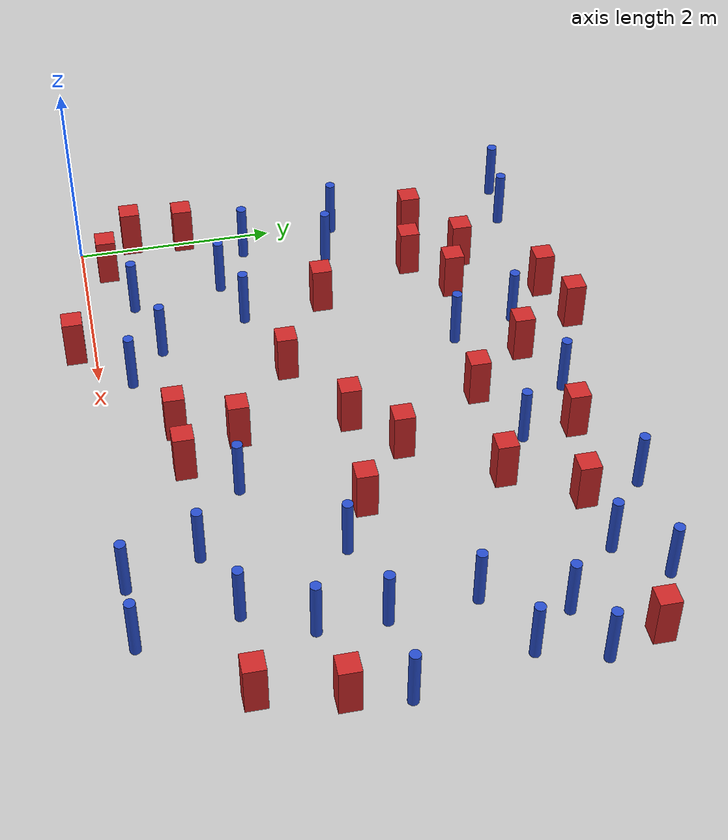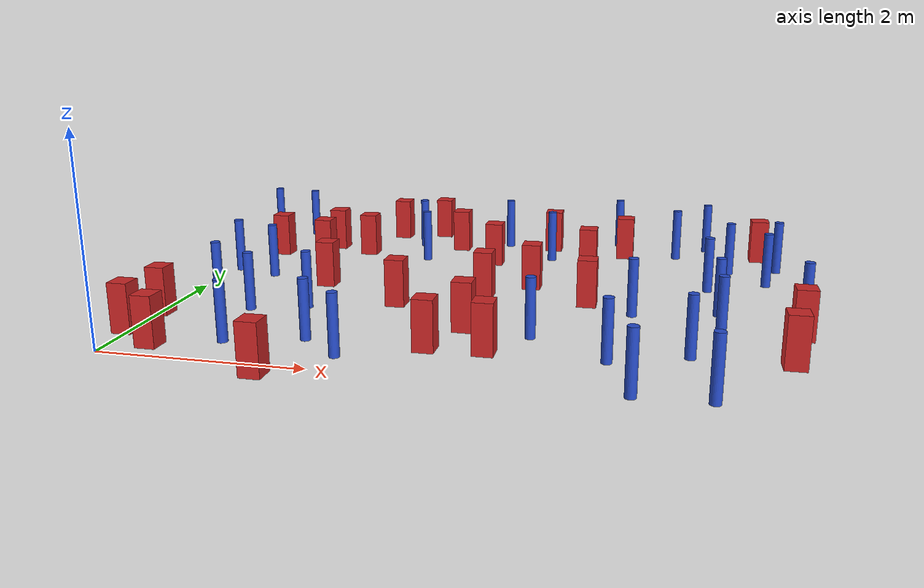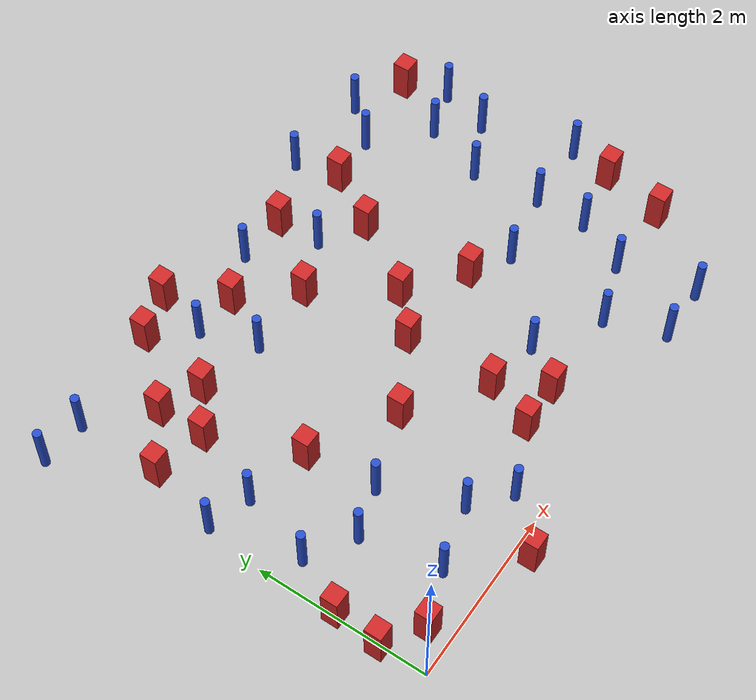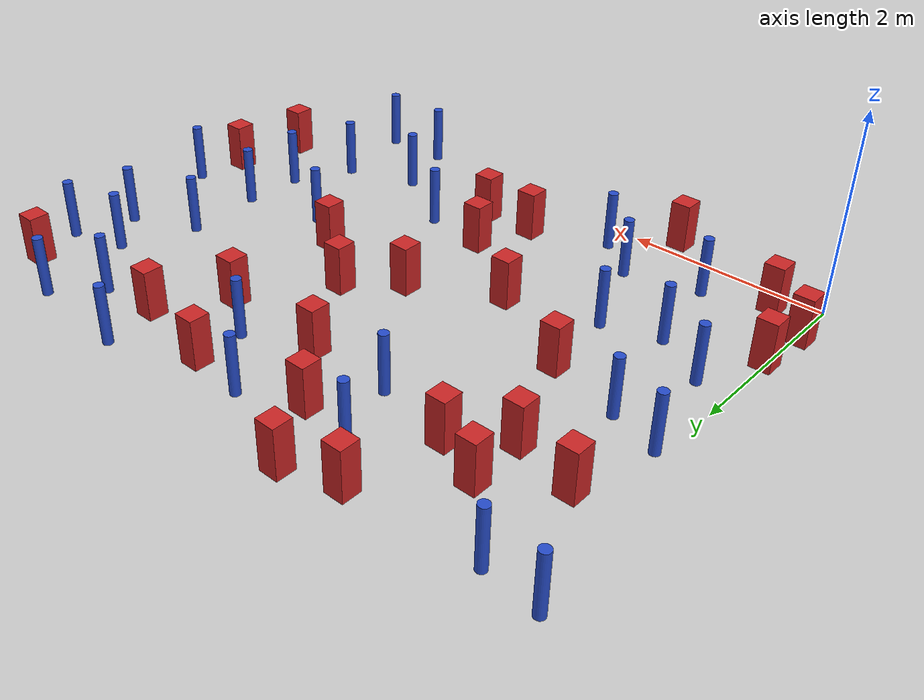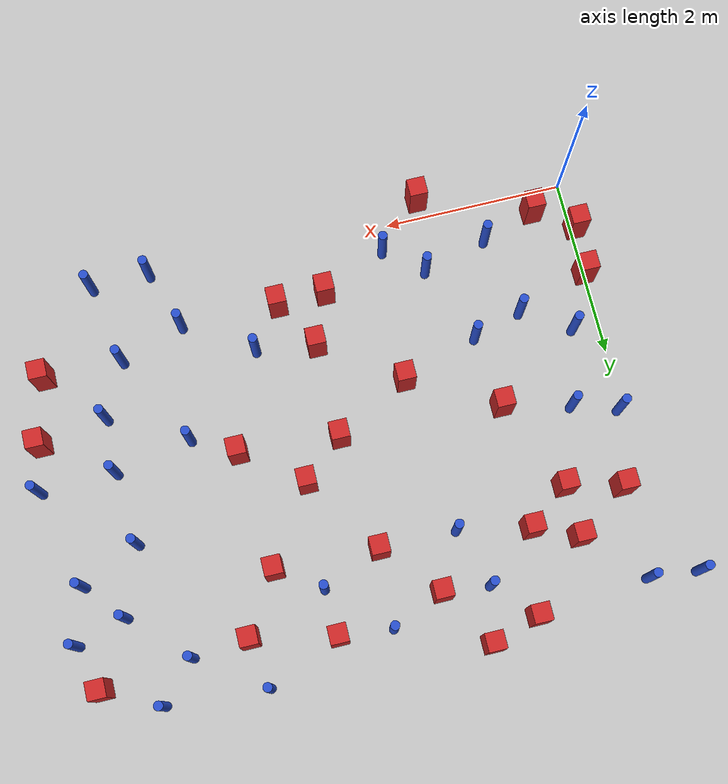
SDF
<sdf version="1.6">
 <model name="dense_99">
  <model name="square_post_obstacle0">
   <static>true</static>
   <pose>0.278284091233 3.50186409478 8.22691968438e-08 7.22125133819e-06 -7.54495500217e-07 2.29674213826e-05</pose>
   <link name="link">
    <pose>0 0 0.25 0 -0 0</pose>
    <inertial>
     <mass>100</mass>
     <inertia>
      <ixx>0.166667</ixx>
      <ixy>0</ixy>
      <ixz>0</ixz>
      <iyy>0.166667</iyy>
      <iyz>0</iyz>
      <izz>0.166667</izz>
     </inertia>
    </inertial>
    <collision name="collision"><geometry><box><size>.2 .2 .5</size></box></geometry></collision>
    <visual name="visual">
     <geometry><box><size>.2 .2 .5</size></box></geometry>
     <material>
      <script><name>Gazebo/Red</name><uri>file://media/materials/scripts/gazebo.material</uri></script>
     </material>
    </visual>
   </link>
  </model>
  <model name="pole_obstacle13">
   <static>true</static>
   <pose>4.39369261284 4.69720485507 2.88873142074e-08 -9.90536690842e-09 4.60219948965e-07 -1.20965994976e-07</pose>
   <link name="link">
    <pose>0 0 0.3 0 -0 0</pose>
    <inertial>
     <mass>1</mass>
     <inertia><ixx>0.145833</ixx><ixy>0</ixy><ixz>0</ixz><iyy>0.145833</iyy><iyz>0</iyz><izz>0.125</izz></inertia>
    </inertial>
    <collision name="collision">
     <geometry><cylinder><radius>0.05</radius><length>.6</length></cylinder></geometry>
    </collision>
    <visual name="visual">
     <geometry><cylinder><radius>0.05</radius><length>.6</length></cylinder></geometry>
     <material>
      <script><name>Gazebo/Blue</name><uri>file://media/materials/scripts/gazebo.material</uri></script>
     </material>
    </visual>
   </link>
  </model>
  <model name="pole_obstacle21">
   <static>true</static>
   <pose>5.4323473388 2.91390937879 2.88873142074e-08 -9.90536690245e-09 4.6021994898e-07 -1.20965994966e-07</pose>
   <link name="link">
    <pose>0 0 0.3 0 -0 0</pose>
    <inertial>
     <mass>1</mass>
     <inertia><ixx>0.145833</ixx><ixy>0</ixy><ixz>0</ixz><iyy>0.145833</iyy><iyz>0</iyz><izz>0.125</izz></inertia>
    </inertial>
    <collision name="collision">
     <geometry><cylinder><radius>0.05</radius><length>.6</length></cylinder></geometry>
    </collision>
    <visual name="visual">
     <geometry><cylinder><radius>0.05</radius><length>.6</length></cylinder></geometry>
     <material>
      <script><name>Gazebo/Blue</name><uri>file://media/materials/scripts/gazebo.material</uri></script>
     </material>
    </visual>
   </link>
  </model>
  <model name="pole_obstacle24">
   <static>true</static>
   <pose>5.50613115673 2.10906915194 2.88873142074e-08 -9.90536690245e-09 4.6021994898e-07 -1.20965994966e-07</pose>
   <link name="link">
    <pose>0 0 0.3 0 -0 0</pose>
    <inertial>
     <mass>1</mass>
     <inertia><ixx>0.145833</ixx><ixy>0</ixy><ixz>0</ixz><iyy>0.145833</iyy><iyz>0</iyz><izz>0.125</izz></inertia>
    </inertial>
    <collision name="collision">
     <geometry><cylinder><radius>0.05</radius><length>.6</length></cylinder></geometry>
    </collision>
    <visual name="visual">
     <geometry><cylinder><radius>0.05</radius><length>.6</length></cylinder></geometry>
     <material>
      <script><name>Gazebo/Blue</name><uri>file://media/materials/scripts/gazebo.material</uri></script>
     </material>
    </visual>
   </link>
  </model>
  <model name="square_post_obstacle19">
   <static>true</static>
   <pose>3.08959006721 2.27627172951 8.22691968438e-08 7.2212513382e-06 -7.54495500217e-07 2.29674213826e-05</pose>
   <link name="link">
    <pose>0 0 0.25 0 -0 0</pose>
    <inertial>
     <mass>100</mass>
     <inertia>
      <ixx>0.166667</ixx>
      <ixy>0</ixy>
      <ixz>0</ixz>
      <iyy>0.166667</iyy>
      <iyz>0</iyz>
      <izz>0.166667</izz>
     </inertia>
    </inertial>
    <collision name="collision"><geometry><box><size>.2 .2 .5</size></box></geometry></collision>
    <visual name="visual">
     <geometry><box><size>.2 .2 .5</size></box></geometry>
     <material>
      <script><name>Gazebo/Red</name><uri>file://media/materials/scripts/gazebo.material</uri></script>
     </material>
    </visual>
   </link>
  </model>
  <model name="pole_obstacle29">
   <static>true</static>
   <pose>5.48616518932 4.61730662018 2.88873142074e-08 -9.90536690842e-09 4.60219948965e-07 -1.20965994976e-07</pose>
   <link name="link">
    <pose>0 0 0.3 0 -0 0</pose>
    <inertial>
     <mass>1</mass>
     <inertia><ixx>0.145833</ixx><ixy>0</ixy><ixz>0</ixz><iyy>0.145833</iyy><iyz>0</iyz><izz>0.125</izz></inertia>
    </inertial>
    <collision name="collision">
     <geometry><cylinder><radius>0.05</radius><length>.6</length></cylinder></geometry>
    </collision>
    <visual name="visual">
     <geometry><cylinder><radius>0.05</radius><length>.6</length></cylinder></geometry>
     <material>
      <script><name>Gazebo/Blue</name><uri>file://media/materials/scripts/gazebo.material</uri></script>
     </material>
    </visual>
   </link>
  </model>
  <model name="square_post_obstacle21">
   <static>true</static>
   <pose>0.0153029696927 1.08734576522 8.22691968438e-08 7.2212513382e-06 -7.54495500217e-07 2.29674213826e-05</pose>
   <link name="link">
    <pose>0 0 0.25 0 -0 0</pose>
    <inertial>
     <mass>100</mass>
     <inertia>
      <ixx>0.166667</ixx>
      <ixy>0</ixy>
      <ixz>0</ixz>
      <iyy>0.166667</iyy>
      <iyz>0</iyz>
      <izz>0.166667</izz>
     </inertia>
    </inertial>
    <collision name="collision"><geometry><box><size>.2 .2 .5</size></box></geometry></collision>
    <visual name="visual">
     <geometry><box><size>.2 .2 .5</size></box></geometry>
     <material>
      <script><name>Gazebo/Red</name><uri>file://media/materials/scripts/gazebo.material</uri></script>
     </material>
    </visual>
   </link>
  </model>
  <model name="square_post_obstacle26">
   <static>true</static>
   <pose>1.34254028254 3.71520903693 8.22691968438e-08 7.2212513382e-06 -7.54495500217e-07 2.29674213826e-05</pose>
   <link name="link">
    <pose>0 0 0.25 0 -0 0</pose>
    <inertial>
     <mass>100</mass>
     <inertia>
      <ixx>0.166667</ixx>
      <ixy>0</ixy>
      <ixz>0</ixz>
      <iyy>0.166667</iyy>
      <iyz>0</iyz>
      <izz>0.166667</izz>
     </inertia>
    </inertial>
    <collision name="collision"><geometry><box><size>.2 .2 .5</size></box></geometry></collision>
    <visual name="visual">
     <geometry><box><size>.2 .2 .5</size></box></geometry>
     <material>
      <script><name>Gazebo/Red</name><uri>file://media/materials/scripts/gazebo.material</uri></script>
     </material>
    </visual>
   </link>
  </model>
  <model name="pole_obstacle41">
   <static>true</static>
   <pose>3.62100782637 3.83456961408 2.88873142074e-08 -9.90536690232e-09 4.6021994898e-07 -1.20965994968e-07</pose>
   <link name="link">
    <pose>0 0 0.3 0 -0 0</pose>
    <inertial>
     <mass>1</mass>
     <inertia><ixx>0.145833</ixx><ixy>0</ixy><ixz>0</ixz><iyy>0.145833</iyy><iyz>0</iyz><izz>0.125</izz></inertia>
    </inertial>
    <collision name="collision">
     <geometry><cylinder><radius>0.05</radius><length>.6</length></cylinder></geometry>
    </collision>
    <visual name="visual">
     <geometry><cylinder><radius>0.05</radius><length>.6</length></cylinder></geometry>
     <material>
      <script><name>Gazebo/Blue</name><uri>file://media/materials/scripts/gazebo.material</uri></script>
     </material>
    </visual>
   </link>
  </model>
  <model name="pole_obstacle57">
   <static>true</static>
   <pose>0.998947193764 0.46308558737 2.88873142074e-08 -9.9053668958e-09 4.60219948995e-07 -1.20965994956e-07</pose>
   <link name="link">
    <pose>0 0 0.3 0 -0 0</pose>
    <inertial>
     <mass>1</mass>
     <inertia><ixx>0.145833</ixx><ixy>0</ixy><ixz>0</ixz><iyy>0.145833</iyy><iyz>0</iyz><izz>0.125</izz></inertia>
    </inertial>
    <collision name="collision">
     <geometry><cylinder><radius>0.05</radius><length>.6</length></cylinder></geometry>
    </collision>
    <visual name="visual">
     <geometry><cylinder><radius>0.05</radius><length>.6</length></cylinder></geometry>
     <material>
      <script><name>Gazebo/Blue</name><uri>file://media/materials/scripts/gazebo.material</uri></script>
     </material>
    </visual>
   </link>
  </model>
  <model name="square_post_obstacle48">
   <static>true</static>
   <pose>2.96531372284 3.55485392847 8.22691968438e-08 7.2212513382e-06 -7.54495500217e-07 2.29674213826e-05</pose>
   <link name="link">
    <pose>0 0 0.25 0 -0 0</pose>
    <inertial>
     <mass>100</mass>
     <inertia>
      <ixx>0.166667</ixx>
      <ixy>0</ixy>
      <ixz>0</ixz>
      <iyy>0.166667</iyy>
      <iyz>0</iyz>
      <izz>0.166667</izz>
     </inertia>
    </inertial>
    <collision name="collision"><geometry><box><size>.2 .2 .5</size></box></geometry></collision>
    <visual name="visual">
     <geometry><box><size>.2 .2 .5</size></box></geometry>
     <material>
      <script><name>Gazebo/Red</name><uri>file://media/materials/scripts/gazebo.material</uri></script>
     </material>
    </visual>
   </link>
  </model>
  <model name="pole_obstacle66">
   <static>true</static>
   <pose>0.285047229699 4.5164428657 2.88873142074e-08 -9.90536689592e-09 4.60219948995e-07 -1.20965994956e-07</pose>
   <link name="link">
    <pose>0 0 0.3 0 -0 0</pose>
    <inertial>
     <mass>1</mass>
     <inertia><ixx>0.145833</ixx><ixy>0</ixy><ixz>0</ixz><iyy>0.145833</iyy><iyz>0</iyz><izz>0.125</izz></inertia>
    </inertial>
    <collision name="collision">
     <geometry><cylinder><radius>0.05</radius><length>.6</length></cylinder></geometry>
    </collision>
    <visual name="visual">
     <geometry><cylinder><radius>0.05</radius><length>.6</length></cylinder></geometry>
     <material>
      <script><name>Gazebo/Blue</name><uri>file://media/materials/scripts/gazebo.material</uri></script>
     </material>
    </visual>
   </link>
  </model>
  <model name="pole_obstacle68">
   <static>true</static>
   <pose>4.49448221479 0.657118531085 2.88873142074e-08 -9.90536689837e-09 4.60219948989e-07 -1.2096599496e-07</pose>
   <link name="link">
    <pose>0 0 0.3 0 -0 0</pose>
    <inertial>
     <mass>1</mass>
     <inertia><ixx>0.145833</ixx><ixy>0</ixy><ixz>0</ixz><iyy>0.145833</iyy><iyz>0</iyz><izz>0.125</izz></inertia>
    </inertial>
    <collision name="collision">
     <geometry><cylinder><radius>0.05</radius><length>.6</length></cylinder></geometry>
    </collision>
    <visual name="visual">
     <geometry><cylinder><radius>0.05</radius><length>.6</length></cylinder></geometry>
     <material>
      <script><name>Gazebo/Blue</name><uri>file://media/materials/scripts/gazebo.material</uri></script>
     </material>
    </visual>
   </link>
  </model>
  <model name="square_post_obstacle56">
   <static>true</static>
   <pose>1.62164734669 -0.188410075844 8.22691968438e-08 7.2212513382e-06 -7.54495500217e-07 2.29674213826e-05</pose>
   <link name="link">
    <pose>0 0 0.25 0 -0 0</pose>
    <inertial>
     <mass>100</mass>
     <inertia>
      <ixx>0.166667</ixx>
      <ixy>0</ixy>
      <ixz>0</ixz>
      <iyy>0.166667</iyy>
      <iyz>0</iyz>
      <izz>0.166667</izz>
     </inertia>
    </inertial>
    <collision name="collision"><geometry><box><size>.2 .2 .5</size></box></geometry></collision>
    <visual name="visual">
     <geometry><box><size>.2 .2 .5</size></box></geometry>
     <material>
      <script><name>Gazebo/Red</name><uri>file://media/materials/scripts/gazebo.material</uri></script>
     </material>
    </visual>
   </link>
  </model>
  <model name="pole_obstacle69">
   <static>true</static>
   <pose>5.49588521843 1.49594933596 2.88873142074e-08 -9.90536689445e-09 4.60219948999e-07 -1.20965994956e-07</pose>
   <link name="link">
    <pose>0 0 0.3 0 -0 0</pose>
    <inertial>
     <mass>1</mass>
     <inertia><ixx>0.145833</ixx><ixy>0</ixy><ixz>0</ixz><iyy>0.145833</iyy><iyz>0</iyz><izz>0.125</izz></inertia>
    </inertial>
    <collision name="collision">
     <geometry><cylinder><radius>0.05</radius><length>.6</length></cylinder></geometry>
    </collision>
    <visual name="visual">
     <geometry><cylinder><radius>0.05</radius><length>.6</length></cylinder></geometry>
     <material>
      <script><name>Gazebo/Blue</name><uri>file://media/materials/scripts/gazebo.material</uri></script>
     </material>
    </visual>
   </link>
  </model>
  <model name="pole_obstacle72">
   <static>true</static>
   <pose>4.65940416583 1.93553378094 2.88873142074e-08 -9.90536689445e-09 4.60219948999e-07 -1.20965994956e-07</pose>
   <link name="link">
    <pose>0 0 0.3 0 -0 0</pose>
    <inertial>
     <mass>1</mass>
     <inertia><ixx>0.145833</ixx><ixy>0</ixy><ixz>0</ixz><iyy>0.145833</iyy><iyz>0</iyz><izz>0.125</izz></inertia>
    </inertial>
    <collision name="collision">
     <geometry><cylinder><radius>0.05</radius><length>.6</length></cylinder></geometry>
    </collision>
    <visual name="visual">
     <geometry><cylinder><radius>0.05</radius><length>.6</length></cylinder></geometry>
     <material>
      <script><name>Gazebo/Blue</name><uri>file://media/materials/scripts/gazebo.material</uri></script>
     </material>
    </visual>
   </link>
  </model>
  <model name="square_post_obstacle68">
   <static>true</static>
   <pose>3.54445836867 2.68189977755 8.22691968438e-08 7.2212513382e-06 -7.54495500217e-07 2.29674213826e-05</pose>
   <link name="link">
    <pose>0 0 0.25 0 -0 0</pose>
    <inertial>
     <mass>100</mass>
     <inertia>
      <ixx>0.166667</ixx>
      <ixy>0</ixy>
      <ixz>0</ixz>
      <iyy>0.166667</iyy>
      <iyz>0</iyz>
      <izz>0.166667</izz>
     </inertia>
    </inertial>
    <collision name="collision"><geometry><box><size>.2 .2 .5</size></box></geometry></collision>
    <visual name="visual">
     <geometry><box><size>.2 .2 .5</size></box></geometry>
     <material>
      <script><name>Gazebo/Red</name><uri>file://media/materials/scripts/gazebo.material</uri></script>
     </material>
    </visual>
   </link>
  </model>
  <model name="pole_obstacle81">
   <static>true</static>
   <pose>0.0798895469012 2.68906135531 2.88873142074e-08 -9.90536689907e-09 4.60219948988e-07 -1.20965994961e-07</pose>
   <link name="link">
    <pose>0 0 0.3 0 -0 0</pose>
    <inertial>
     <mass>1</mass>
     <inertia><ixx>0.145833</ixx><ixy>0</ixy><ixz>0</ixz><iyy>0.145833</iyy><iyz>0</iyz><izz>0.125</izz></inertia>
    </inertial>
    <collision name="collision">
     <geometry><cylinder><radius>0.05</radius><length>.6</length></cylinder></geometry>
    </collision>
    <visual name="visual">
     <geometry><cylinder><radius>0.05</radius><length>.6</length></cylinder></geometry>
     <material>
      <script><name>Gazebo/Blue</name><uri>file://media/materials/scripts/gazebo.material</uri></script>
     </material>
    </visual>
   </link>
  </model>
  <model name="pole_obstacle85">
   <static>true</static>
   <pose>5.37336520467 -0.0040371756682 2.88873142074e-08 -9.90536689125e-09 4.60219949006e-07 -1.20965994951e-07</pose>
   <link name="link">
    <pose>0 0 0.3 0 -0 0</pose>
    <inertial>
     <mass>1</mass>
     <inertia><ixx>0.145833</ixx><ixy>0</ixy><ixz>0</ixz><iyy>0.145833</iyy><iyz>0</iyz><izz>0.125</izz></inertia>
    </inertial>
    <collision name="collision">
     <geometry><cylinder><radius>0.05</radius><length>.6</length></cylinder></geometry>
    </collision>
    <visual name="visual">
     <geometry><cylinder><radius>0.05</radius><length>.6</length></cylinder></geometry>
     <material>
      <script><name>Gazebo/Blue</name><uri>file://media/materials/scripts/gazebo.material</uri></script>
     </material>
    </visual>
   </link>
  </model>
  <model name="square_post_obstacle73">
   <static>true</static>
   <pose>4.49235609507 4.14879047352 8.22691968438e-08 7.2212513382e-06 -7.54495500217e-07 2.29674213826e-05</pose>
   <link name="link">
    <pose>0 0 0.25 0 -0 0</pose>
    <inertial>
     <mass>100</mass>
     <inertia>
      <ixx>0.166667</ixx>
      <ixy>0</ixy>
      <ixz>0</ixz>
      <iyy>0.166667</iyy>
      <iyz>0</iyz>
      <izz>0.166667</izz>
     </inertia>
    </inertial>
    <collision name="collision"><geometry><box><size>.2 .2 .5</size></box></geometry></collision>
    <visual name="visual">
     <geometry><box><size>.2 .2 .5</size></box></geometry>
     <material>
      <script><name>Gazebo/Red</name><uri>file://media/materials/scripts/gazebo.material</uri></script>
     </material>
    </visual>
   </link>
  </model>
  <model name="pole_obstacle86">
   <static>true</static>
   <pose>-0.249711931008 4.56645546046 2.88873142074e-08 -9.90536689703e-09 4.60219948992e-07 -1.20965994959e-07</pose>
   <link name="link">
    <pose>0 0 0.3 0 -0 0</pose>
    <inertial>
     <mass>1</mass>
     <inertia><ixx>0.145833</ixx><ixy>0</ixy><ixz>0</ixz><iyy>0.145833</iyy><iyz>0</iyz><izz>0.125</izz></inertia>
    </inertial>
    <collision name="collision">
     <geometry><cylinder><radius>0.05</radius><length>.6</length></cylinder></geometry>
    </collision>
    <visual name="visual">
     <geometry><cylinder><radius>0.05</radius><length>.6</length></cylinder></geometry>
     <material>
      <script><name>Gazebo/Blue</name><uri>file://media/materials/scripts/gazebo.material</uri></script>
     </material>
    </visual>
   </link>
  </model>
  <model name="square_post_obstacle74">
   <static>true</static>
   <pose>3.5902777816 4.34128332955 8.22691968438e-08 7.2212513382e-06 -7.54495500217e-07 2.29674213826e-05</pose>
   <link name="link">
    <pose>0 0 0.25 0 -0 0</pose>
    <inertial>
     <mass>100</mass>
     <inertia>
      <ixx>0.166667</ixx>
      <ixy>0</ixy>
      <ixz>0</ixz>
      <iyy>0.166667</iyy>
      <iyz>0</iyz>
      <izz>0.166667</izz>
     </inertia>
    </inertial>
    <collision name="collision"><geometry><box><size>.2 .2 .5</size></box></geometry></collision>
    <visual name="visual">
     <geometry><box><size>.2 .2 .5</size></box></geometry>
     <material>
      <script><name>Gazebo/Red</name><uri>file://media/materials/scripts/gazebo.material</uri></script>
     </material>
    </visual>
   </link>
  </model>
  <model name="square_post_obstacle76">
   <static>true</static>
   <pose>6.08599478966 4.30738144883 8.22691968438e-08 7.2212513382e-06 -7.54495500217e-07 2.29674213826e-05</pose>
   <link name="link">
    <pose>0 0 0.25 0 -0 0</pose>
    <inertial>
     <mass>100</mass>
     <inertia>
      <ixx>0.166667</ixx>
      <ixy>0</ixy>
      <ixz>0</ixz>
      <iyy>0.166667</iyy>
      <iyz>0</iyz>
      <izz>0.166667</izz>
     </inertia>
    </inertial>
    <collision name="collision"><geometry><box><size>.2 .2 .5</size></box></geometry></collision>
    <visual name="visual">
     <geometry><box><size>.2 .2 .5</size></box></geometry>
     <material>
      <script><name>Gazebo/Red</name><uri>file://media/materials/scripts/gazebo.material</uri></script>
     </material>
    </visual>
   </link>
  </model>
  <model name="square_post_obstacle78">
   <static>true</static>
   <pose>3.41412352791 0.66582962304 8.22691968438e-08 7.2212513382e-06 -7.54495500217e-07 2.29674213826e-05</pose>
   <link name="link">
    <pose>0 0 0.25 0 -0 0</pose>
    <inertial>
     <mass>100</mass>
     <inertia>
      <ixx>0.166667</ixx>
      <ixy>0</ixy>
      <ixz>0</ixz>
      <iyy>0.166667</iyy>
      <iyz>0</iyz>
      <izz>0.166667</izz>
     </inertia>
    </inertial>
    <collision name="collision"><geometry><box><size>.2 .2 .5</size></box></geometry></collision>
    <visual name="visual">
     <geometry><box><size>.2 .2 .5</size></box></geometry>
     <material>
      <script><name>Gazebo/Red</name><uri>file://media/materials/scripts/gazebo.material</uri></script>
     </material>
    </visual>
   </link>
  </model>
  <model name="square_post_obstacle80">
   <static>true</static>
   <pose>2.43571187893 4.14643610504 8.22691968438e-08 7.2212513382e-06 -7.54495500217e-07 2.29674213826e-05</pose>
   <link name="link">
    <pose>0 0 0.25 0 -0 0</pose>
    <inertial>
     <mass>100</mass>
     <inertia>
      <ixx>0.166667</ixx>
      <ixy>0</ixy>
      <ixz>0</ixz>
      <iyy>0.166667</iyy>
      <iyz>0</iyz>
      <izz>0.166667</izz>
     </inertia>
    </inertial>
    <collision name="collision"><geometry><box><size>.2 .2 .5</size></box></geometry></collision>
    <visual name="visual">
     <geometry><box><size>.2 .2 .5</size></box></geometry>
     <material>
      <script><name>Gazebo/Red</name><uri>file://media/materials/scripts/gazebo.material</uri></script>
     </material>
    </visual>
   </link>
  </model>
  <model name="square_post_obstacle85">
   <static>true</static>
   <pose>0.88314386118 3.35639436 8.22691968438e-08 7.2212513382e-06 -7.54495500217e-07 2.29674213826e-05</pose>
   <link name="link">
    <pose>0 0 0.25 0 -0 0</pose>
    <inertial>
     <mass>100</mass>
     <inertia>
      <ixx>0.166667</ixx>
      <ixy>0</ixy>
      <ixz>0</ixz>
      <iyy>0.166667</iyy>
      <iyz>0</iyz>
      <izz>0.166667</izz>
     </inertia>
    </inertial>
    <collision name="collision"><geometry><box><size>.2 .2 .5</size></box></geometry></collision>
    <visual name="visual">
     <geometry><box><size>.2 .2 .5</size></box></geometry>
     <material>
      <script><name>Gazebo/Red</name><uri>file://media/materials/scripts/gazebo.material</uri></script>
     </material>
    </visual>
   </link>
  </model>
  <model name="square_post_obstacle93">
   <static>true</static>
   <pose>2.25660715789 1.81995888021 8.22691968438e-08 7.2212513382e-06 -7.54495500217e-07 2.29674213826e-05</pose>
   <link name="link">
    <pose>0 0 0.25 0 -0 0</pose>
    <inertial>
     <mass>100</mass>
     <inertia>
      <ixx>0.166667</ixx>
      <ixy>0</ixy>
      <ixz>0</ixz>
      <iyy>0.166667</iyy>
      <iyz>0</iyz>
      <izz>0.166667</izz>
     </inertia>
    </inertial>
    <collision name="collision"><geometry><box><size>.2 .2 .5</size></box></geometry></collision>
    <visual name="visual">
     <geometry><box><size>.2 .2 .5</size></box></geometry>
     <material>
      <script><name>Gazebo/Red</name><uri>file://media/materials/scripts/gazebo.material</uri></script>
     </material>
    </visual>
   </link>
  </model>
  <model name="pole_obstacle116">
   <static>true</static>
   <pose>5.10788813895 4.206130297 2.88873142074e-08 -9.90536690842e-09 4.60219948965e-07 -1.20965994976e-07</pose>
   <link name="link">
    <pose>0 0 0.3 0 -0 0</pose>
    <inertial>
     <mass>1</mass>
     <inertia><ixx>0.145833</ixx><ixy>0</ixy><ixz>0</ixz><iyy>0.145833</iyy><iyz>0</iyz><izz>0.125</izz></inertia>
    </inertial>
    <collision name="collision">
     <geometry><cylinder><radius>0.05</radius><length>.6</length></cylinder></geometry>
    </collision>
    <visual name="visual">
     <geometry><cylinder><radius>0.05</radius><length>.6</length></cylinder></geometry>
     <material>
      <script><name>Gazebo/Blue</name><uri>file://media/materials/scripts/gazebo.material</uri></script>
     </material>
    </visual>
   </link>
  </model>
  <model name="square_post_obstacle116">
   <static>true</static>
   <pose>0.393422788689 0.249220828188 8.22691968438e-08 7.22125133819e-06 -7.54495500217e-07 2.29674213826e-05</pose>
   <link name="link">
    <pose>0 0 0.25 0 -0 0</pose>
    <inertial>
     <mass>100</mass>
     <inertia>
      <ixx>0.166667</ixx>
      <ixy>0</ixy>
      <ixz>0</ixz>
      <iyy>0.166667</iyy>
      <iyz>0</iyz>
      <izz>0.166667</izz>
     </inertia>
    </inertial>
    <collision name="collision"><geometry><box><size>.2 .2 .5</size></box></geometry></collision>
    <visual name="visual">
     <geometry><box><size>.2 .2 .5</size></box></geometry>
     <material>
      <script><name>Gazebo/Red</name><uri>file://media/materials/scripts/gazebo.material</uri></script>
     </material>
    </visual>
   </link>
  </model>
  <model name="square_post_obstacle120">
   <static>true</static>
   <pose>1.30207769927 2.34741639377 8.22691968438e-08 7.2212513382e-06 -7.54495500217e-07 2.29674213826e-05</pose>
   <link name="link">
    <pose>0 0 0.25 0 -0 0</pose>
    <inertial>
     <mass>100</mass>
     <inertia>
      <ixx>0.166667</ixx>
      <ixy>0</ixy>
      <ixz>0</ixz>
      <iyy>0.166667</iyy>
      <iyz>0</iyz>
      <izz>0.166667</izz>
     </inertia>
    </inertial>
    <collision name="collision"><geometry><box><size>.2 .2 .5</size></box></geometry></collision>
    <visual name="visual">
     <geometry><box><size>.2 .2 .5</size></box></geometry>
     <material>
      <script><name>Gazebo/Red</name><uri>file://media/materials/scripts/gazebo.material</uri></script>
     </material>
    </visual>
   </link>
  </model>
  <model name="pole_obstacle126">
   <static>true</static>
   <pose>1.39003565961 1.53932213401 2.88873142074e-08 -9.90536689672e-09 4.60219948993e-07 -1.20965994959e-07</pose>
   <link name="link">
    <pose>0 0 0.3 0 -0 0</pose>
    <inertial>
     <mass>1</mass>
     <inertia><ixx>0.145833</ixx><ixy>0</ixy><ixz>0</ixz><iyy>0.145833</iyy><iyz>0</iyz><izz>0.125</izz></inertia>
    </inertial>
    <collision name="collision">
     <geometry><cylinder><radius>0.05</radius><length>.6</length></cylinder></geometry>
    </collision>
    <visual name="visual">
     <geometry><cylinder><radius>0.05</radius><length>.6</length></cylinder></geometry>
     <material>
      <script><name>Gazebo/Blue</name><uri>file://media/materials/scripts/gazebo.material</uri></script>
     </material>
    </visual>
   </link>
  </model>
  <model name="square_post_obstacle123">
   <static>true</static>
   <pose>1.52329872518 4.62259577691 8.22691968438e-08 7.2212513382e-06 -7.54495500217e-07 2.29674213826e-05</pose>
   <link name="link">
    <pose>0 0 0.25 0 -0 0</pose>
    <inertial>
     <mass>100</mass>
     <inertia>
      <ixx>0.166667</ixx>
      <ixy>0</ixy>
      <ixz>0</ixz>
      <iyy>0.166667</iyy>
      <iyz>0</iyz>
      <izz>0.166667</izz>
     </inertia>
    </inertial>
    <collision name="collision"><geometry><box><size>.2 .2 .5</size></box></geometry></collision>
    <visual name="visual">
     <geometry><box><size>.2 .2 .5</size></box></geometry>
     <material>
      <script><name>Gazebo/Red</name><uri>file://media/materials/scripts/gazebo.material</uri></script>
     </material>
    </visual>
   </link>
  </model>
  <model name="square_post_obstacle125">
   <static>true</static>
   <pose>2.87686277375 0.6480223437 8.22691968438e-08 7.2212513382e-06 -7.54495500217e-07 2.29674213826e-05</pose>
   <link name="link">
    <pose>0 0 0.25 0 -0 0</pose>
    <inertial>
     <mass>100</mass>
     <inertia>
      <ixx>0.166667</ixx>
      <ixy>0</ixy>
      <ixz>0</ixz>
      <iyy>0.166667</iyy>
      <iyz>0</iyz>
      <izz>0.166667</izz>
     </inertia>
    </inertial>
    <collision name="collision"><geometry><box><size>.2 .2 .5</size></box></geometry></collision>
    <visual name="visual">
     <geometry><box><size>.2 .2 .5</size></box></geometry>
     <material>
      <script><name>Gazebo/Red</name><uri>file://media/materials/scripts/gazebo.material</uri></script>
     </material>
    </visual>
   </link>
  </model>
  <model name="square_post_obstacle127">
   <static>true</static>
   <pose>6.23954122205 1.61253664526 8.22691968438e-08 7.2212513382e-06 -7.54495500217e-07 2.29674213826e-05</pose>
   <link name="link">
    <pose>0 0 0.25 0 -0 0</pose>
    <inertial>
     <mass>100</mass>
     <inertia>
      <ixx>0.166667</ixx>
      <ixy>0</ixy>
      <ixz>0</ixz>
      <iyy>0.166667</iyy>
      <iyz>0</iyz>
      <izz>0.166667</izz>
     </inertia>
    </inertial>
    <collision name="collision"><geometry><box><size>.2 .2 .5</size></box></geometry></collision>
    <visual name="visual">
     <geometry><box><size>.2 .2 .5</size></box></geometry>
     <material>
      <script><name>Gazebo/Red</name><uri>file://media/materials/scripts/gazebo.material</uri></script>
     </material>
    </visual>
   </link>
  </model>
  <model name="pole_obstacle135">
   <static>true</static>
   <pose>4.72465610695 -0.0166406421167 2.88873142074e-08 -9.90536690014e-09 4.60219948985e-07 -1.20965994965e-07</pose>
   <link name="link">
    <pose>0 0 0.3 0 -0 0</pose>
    <inertial>
     <mass>1</mass>
     <inertia><ixx>0.145833</ixx><ixy>0</ixy><ixz>0</ixz><iyy>0.145833</iyy><iyz>0</iyz><izz>0.125</izz></inertia>
    </inertial>
    <collision name="collision">
     <geometry><cylinder><radius>0.05</radius><length>.6</length></cylinder></geometry>
    </collision>
    <visual name="visual">
     <geometry><cylinder><radius>0.05</radius><length>.6</length></cylinder></geometry>
     <material>
      <script><name>Gazebo/Blue</name><uri>file://media/materials/scripts/gazebo.material</uri></script>
     </material>
    </visual>
   </link>
  </model>
  <model name="pole_obstacle142">
   <static>true</static>
   <pose>0.837682158257 1.37097368977 2.88873142074e-08 -9.90536689855e-09 4.60219948989e-07 -1.20965994962e-07</pose>
   <link name="link">
    <pose>0 0 0.3 0 -0 0</pose>
    <inertial>
     <mass>1</mass>
     <inertia><ixx>0.145833</ixx><ixy>0</ixy><ixz>0</ixz><iyy>0.145833</iyy><iyz>0</iyz><izz>0.125</izz></inertia>
    </inertial>
    <collision name="collision">
     <geometry><cylinder><radius>0.05</radius><length>.6</length></cylinder></geometry>
    </collision>
    <visual name="visual">
     <geometry><cylinder><radius>0.05</radius><length>.6</length></cylinder></geometry>
     <material>
      <script><name>Gazebo/Blue</name><uri>file://media/materials/scripts/gazebo.material</uri></script>
     </material>
    </visual>
   </link>
  </model>
  <model name="pole_obstacle146">
   <static>true</static>
   <pose>6.3348643279 2.12744997515 2.88873142074e-08 -9.90536690245e-09 4.6021994898e-07 -1.20965994966e-07</pose>
   <link name="link">
    <pose>0 0 0.3 0 -0 0</pose>
    <inertial>
     <mass>1</mass>
     <inertia><ixx>0.145833</ixx><ixy>0</ixy><ixz>0</ixz><iyy>0.145833</iyy><iyz>0</iyz><izz>0.125</izz></inertia>
    </inertial>
    <collision name="collision">
     <geometry><cylinder><radius>0.05</radius><length>.6</length></cylinder></geometry>
    </collision>
    <visual name="visual">
     <geometry><cylinder><radius>0.05</radius><length>.6</length></cylinder></geometry>
     <material>
      <script><name>Gazebo/Blue</name><uri>file://media/materials/scripts/gazebo.material</uri></script>
     </material>
    </visual>
   </link>
  </model>
  <model name="square_post_obstacle141">
   <static>true</static>
   <pose>4.09012657928 3.50755656646 8.22691968438e-08 7.2212513382e-06 -7.54495500217e-07 2.29674213826e-05</pose>
   <link name="link">
    <pose>0 0 0.25 0 -0 0</pose>
    <inertial>
     <mass>100</mass>
     <inertia>
      <ixx>0.166667</ixx>
      <ixy>0</ixy>
      <ixz>0</ixz>
      <iyy>0.166667</iyy>
      <iyz>0</iyz>
      <izz>0.166667</izz>
     </inertia>
    </inertial>
    <collision name="collision"><geometry><box><size>.2 .2 .5</size></box></geometry></collision>
    <visual name="visual">
     <geometry><box><size>.2 .2 .5</size></box></geometry>
     <material>
      <script><name>Gazebo/Red</name><uri>file://media/materials/scripts/gazebo.material</uri></script>
     </material>
    </visual>
   </link>
  </model>
  <model name="pole_obstacle150">
   <static>true</static>
   <pose>1.918368226 4.20552458931 2.88873142074e-08 -9.90536689852e-09 4.60219948989e-07 -1.2096599496e-07</pose>
   <link name="link">
    <pose>0 0 0.3 0 -0 0</pose>
    <inertial>
     <mass>1</mass>
     <inertia><ixx>0.145833</ixx><ixy>0</ixy><ixz>0</ixz><iyy>0.145833</iyy><iyz>0</iyz><izz>0.125</izz></inertia>
    </inertial>
    <collision name="collision">
     <geometry><cylinder><radius>0.05</radius><length>.6</length></cylinder></geometry>
    </collision>
    <visual name="visual">
     <geometry><cylinder><radius>0.05</radius><length>.6</length></cylinder></geometry>
     <material>
      <script><name>Gazebo/Blue</name><uri>file://media/materials/scripts/gazebo.material</uri></script>
     </material>
    </visual>
   </link>
  </model>
  <model name="pole_obstacle152">
   <static>true</static>
   <pose>2.13810659491 0.320433350081 2.88873142074e-08 -9.90536689307e-09 4.60219949002e-07 -1.20965994954e-07</pose>
   <link name="link">
    <pose>0 0 0.3 0 -0 0</pose>
    <inertial>
     <mass>1</mass>
     <inertia><ixx>0.145833</ixx><ixy>0</ixy><ixz>0</ixz><iyy>0.145833</iyy><iyz>0</iyz><izz>0.125</izz></inertia>
    </inertial>
    <collision name="collision">
     <geometry><cylinder><radius>0.05</radius><length>.6</length></cylinder></geometry>
    </collision>
    <visual name="visual">
     <geometry><cylinder><radius>0.05</radius><length>.6</length></cylinder></geometry>
     <material>
      <script><name>Gazebo/Blue</name><uri>file://media/materials/scripts/gazebo.material</uri></script>
     </material>
    </visual>
   </link>
  </model>
  <model name="square_post_obstacle147">
   <static>true</static>
   <pose>0.868629374607 3.91851099894 8.22691968438e-08 7.2212513382e-06 -7.54495500217e-07 2.29674213826e-05</pose>
   <link name="link">
    <pose>0 0 0.25 0 -0 0</pose>
    <inertial>
     <mass>100</mass>
     <inertia>
      <ixx>0.166667</ixx>
      <ixy>0</ixy>
      <ixz>0</ixz>
      <iyy>0.166667</iyy>
      <iyz>0</iyz>
      <izz>0.166667</izz>
     </inertia>
    </inertial>
    <collision name="collision"><geometry><box><size>.2 .2 .5</size></box></geometry></collision>
    <visual name="visual">
     <geometry><box><size>.2 .2 .5</size></box></geometry>
     <material>
      <script><name>Gazebo/Red</name><uri>file://media/materials/scripts/gazebo.material</uri></script>
     </material>
    </visual>
   </link>
  </model>
  <model name="pole_obstacle153">
   <static>true</static>
   <pose>5.2049662826 0.899762231958 2.88873142074e-08 -9.90536689837e-09 4.60219948989e-07 -1.2096599496e-07</pose>
   <link name="link">
    <pose>0 0 0.3 0 -0 0</pose>
    <inertial>
     <mass>1</mass>
     <inertia><ixx>0.145833</ixx><ixy>0</ixy><ixz>0</ixz><iyy>0.145833</iyy><iyz>0</iyz><izz>0.125</izz></inertia>
    </inertial>
    <collision name="collision">
     <geometry><cylinder><radius>0.05</radius><length>.6</length></cylinder></geometry>
    </collision>
    <visual name="visual">
     <geometry><cylinder><radius>0.05</radius><length>.6</length></cylinder></geometry>
     <material>
      <script><name>Gazebo/Blue</name><uri>file://media/materials/scripts/gazebo.material</uri></script>
     </material>
    </visual>
   </link>
  </model>
  <model name="pole_obstacle156">
   <static>true</static>
   <pose>6.07250073608 3.22166313513 2.88873142074e-08 -9.90536690245e-09 4.6021994898e-07 -1.20965994966e-07</pose>
   <link name="link">
    <pose>0 0 0.3 0 -0 0</pose>
    <inertial>
     <mass>1</mass>
     <inertia><ixx>0.145833</ixx><ixy>0</ixy><ixz>0</ixz><iyy>0.145833</iyy><iyz>0</iyz><izz>0.125</izz></inertia>
    </inertial>
    <collision name="collision">
     <geometry><cylinder><radius>0.05</radius><length>.6</length></cylinder></geometry>
    </collision>
    <visual name="visual">
     <geometry><cylinder><radius>0.05</radius><length>.6</length></cylinder></geometry>
     <material>
      <script><name>Gazebo/Blue</name><uri>file://media/materials/scripts/gazebo.material</uri></script>
     </material>
    </visual>
   </link>
  </model>
  <model name="square_post_obstacle165">
   <static>true</static>
   <pose>6.0728443036 0.881981803012 8.22691968438e-08 7.2212513382e-06 -7.54495500217e-07 2.29674213826e-05</pose>
   <link name="link">
    <pose>0 0 0.25 0 -0 0</pose>
    <inertial>
     <mass>100</mass>
     <inertia>
      <ixx>0.166667</ixx>
      <ixy>0</ixy>
      <ixz>0</ixz>
      <iyy>0.166667</iyy>
      <iyz>0</iyz>
      <izz>0.166667</izz>
     </inertia>
    </inertial>
    <collision name="collision"><geometry><box><size>.2 .2 .5</size></box></geometry></collision>
    <visual name="visual">
     <geometry><box><size>.2 .2 .5</size></box></geometry>
     <material>
      <script><name>Gazebo/Red</name><uri>file://media/materials/scripts/gazebo.material</uri></script>
     </material>
    </visual>
   </link>
  </model>
  <model name="square_post_obstacle170">
   <static>true</static>
   <pose>3.10186064378 1.21540554711 8.22691968438e-08 7.2212513382e-06 -7.54495500217e-07 2.29674213826e-05</pose>
   <link name="link">
    <pose>0 0 0.25 0 -0 0</pose>
    <inertial>
     <mass>100</mass>
     <inertia>
      <ixx>0.166667</ixx>
      <ixy>0</ixy>
      <ixz>0</ixz>
      <iyy>0.166667</iyy>
      <iyz>0</iyz>
      <izz>0.166667</izz>
     </inertia>
    </inertial>
    <collision name="collision"><geometry><box><size>.2 .2 .5</size></box></geometry></collision>
    <visual name="visual">
     <geometry><box><size>.2 .2 .5</size></box></geometry>
     <material>
      <script><name>Gazebo/Red</name><uri>file://media/materials/scripts/gazebo.material</uri></script>
     </material>
    </visual>
   </link>
  </model>
  <model name="pole_obstacle171">
   <static>true</static>
   <pose>6.24675373381 3.81047623465 2.88873142074e-08 -9.90536690245e-09 4.6021994898e-07 -1.20965994966e-07</pose>
   <link name="link">
    <pose>0 0 0.3 0 -0 0</pose>
    <inertial>
     <mass>1</mass>
     <inertia><ixx>0.145833</ixx><ixy>0</ixy><ixz>0</ixz><iyy>0.145833</iyy><iyz>0</iyz><izz>0.125</izz></inertia>
    </inertial>
    <collision name="collision">
     <geometry><cylinder><radius>0.05</radius><length>.6</length></cylinder></geometry>
    </collision>
    <visual name="visual">
     <geometry><cylinder><radius>0.05</radius><length>.6</length></cylinder></geometry>
     <material>
      <script><name>Gazebo/Blue</name><uri>file://media/materials/scripts/gazebo.material</uri></script>
     </material>
    </visual>
   </link>
  </model>
  <model name="pole_obstacle173">
   <static>true</static>
   <pose>3.7587447854 1.11830711416 2.88873142074e-08 -9.90536689395e-09 4.60219949e-07 -1.20965994953e-07</pose>
   <link name="link">
    <pose>0 0 0.3 0 -0 0</pose>
    <inertial>
     <mass>1</mass>
     <inertia><ixx>0.145833</ixx><ixy>0</ixy><ixz>0</ixz><iyy>0.145833</iyy><iyz>0</iyz><izz>0.125</izz></inertia>
    </inertial>
    <collision name="collision">
     <geometry><cylinder><radius>0.05</radius><length>.6</length></cylinder></geometry>
    </collision>
    <visual name="visual">
     <geometry><cylinder><radius>0.05</radius><length>.6</length></cylinder></geometry>
     <material>
      <script><name>Gazebo/Blue</name><uri>file://media/materials/scripts/gazebo.material</uri></script>
     </material>
    </visual>
   </link>
  </model>
  <model name="square_post_obstacle172">
   <static>true</static>
   <pose>2.05414876784 4.78805152157 8.22691968438e-08 7.22125133819e-06 -7.54495500217e-07 2.29674213826e-05</pose>
   <link name="link">
    <pose>0 0 0.25 0 -0 0</pose>
    <inertial>
     <mass>100</mass>
     <inertia>
      <ixx>0.166667</ixx>
      <ixy>0</ixy>
      <ixz>0</ixz>
      <iyy>0.166667</iyy>
      <iyz>0</iyz>
      <izz>0.166667</izz>
     </inertia>
    </inertial>
    <collision name="collision"><geometry><box><size>.2 .2 .5</size></box></geometry></collision>
    <visual name="visual">
     <geometry><box><size>.2 .2 .5</size></box></geometry>
     <material>
      <script><name>Gazebo/Red</name><uri>file://media/materials/scripts/gazebo.material</uri></script>
     </material>
    </visual>
   </link>
  </model>
  <model name="pole_obstacle180">
   <static>true</static>
   <pose>3.0128306097 4.40417158484 2.88873142074e-08 -9.90536689859e-09 4.60219948989e-07 -1.20965994961e-07</pose>
   <link name="link">
    <pose>0 0 0.3 0 -0 0</pose>
    <inertial>
     <mass>1</mass>
     <inertia><ixx>0.145833</ixx><ixy>0</ixy><ixz>0</ixz><iyy>0.145833</iyy><iyz>0</iyz><izz>0.125</izz></inertia>
    </inertial>
    <collision name="collision">
     <geometry><cylinder><radius>0.05</radius><length>.6</length></cylinder></geometry>
    </collision>
    <visual name="visual">
     <geometry><cylinder><radius>0.05</radius><length>.6</length></cylinder></geometry>
     <material>
      <script><name>Gazebo/Blue</name><uri>file://media/materials/scripts/gazebo.material</uri></script>
     </material>
    </visual>
   </link>
  </model>
  <model name="pole_obstacle182">
   <static>true</static>
   <pose>0.314710233521 1.69426364752 2.88873142074e-08 -9.90536689905e-09 4.60219948988e-07 -1.2096599496e-07</pose>
   <link name="link">
    <pose>0 0 0.3 0 -0 0</pose>
    <inertial>
     <mass>1</mass>
     <inertia><ixx>0.145833</ixx><ixy>0</ixy><ixz>0</ixz><iyy>0.145833</iyy><iyz>0</iyz><izz>0.125</izz></inertia>
    </inertial>
    <collision name="collision">
     <geometry><cylinder><radius>0.05</radius><length>.6</length></cylinder></geometry>
    </collision>
    <visual name="visual">
     <geometry><cylinder><radius>0.05</radius><length>.6</length></cylinder></geometry>
     <material>
      <script><name>Gazebo/Blue</name><uri>file://media/materials/scripts/gazebo.material</uri></script>
     </material>
    </visual>
   </link>
  </model>
  <model name="pole_obstacle186">
   <static>true</static>
   <pose>5.70025757428 3.64272264284 2.88873142074e-08 -9.90536690245e-09 4.6021994898e-07 -1.20965994966e-07</pose>
   <link name="link">
    <pose>0 0 0.3 0 -0 0</pose>
    <inertial>
     <mass>1</mass>
     <inertia><ixx>0.145833</ixx><ixy>0</ixy><ixz>0</ixz><iyy>0.145833</iyy><iyz>0</iyz><izz>0.125</izz></inertia>
    </inertial>
    <collision name="collision">
     <geometry><cylinder><radius>0.05</radius><length>.6</length></cylinder></geometry>
    </collision>
    <visual name="visual">
     <geometry><cylinder><radius>0.05</radius><length>.6</length></cylinder></geometry>
     <material>
      <script><name>Gazebo/Blue</name><uri>file://media/materials/scripts/gazebo.material</uri></script>
     </material>
    </visual>
   </link>
  </model>
  <model name="square_post_obstacle201">
   <static>true</static>
   <pose>-0.0352427620989 0.543400712471 8.22691968438e-08 7.2212513382e-06 -7.54495500217e-07 2.29674213826e-05</pose>
   <link name="link">
    <pose>0 0 0.25 0 -0 0</pose>
    <inertial>
     <mass>100</mass>
     <inertia>
      <ixx>0.166667</ixx>
      <ixy>0</ixy>
      <ixz>0</ixz>
      <iyy>0.166667</iyy>
      <iyz>0</iyz>
      <izz>0.166667</izz>
     </inertia>
    </inertial>
    <collision name="collision"><geometry><box><size>.2 .2 .5</size></box></geometry></collision>
    <visual name="visual">
     <geometry><box><size>.2 .2 .5</size></box></geometry>
     <material>
      <script><name>Gazebo/Red</name><uri>file://media/materials/scripts/gazebo.material</uri></script>
     </material>
    </visual>
   </link>
  </model>
  <model name="square_post_obstacle205">
   <static>true</static>
   <pose>4.19122507833 2.19156759017 8.22691968438e-08 7.2212513382e-06 -7.54495500217e-07 2.29674213826e-05</pose>
   <link name="link">
    <pose>0 0 0.25 0 -0 0</pose>
    <inertial>
     <mass>100</mass>
     <inertia>
      <ixx>0.166667</ixx>
      <ixy>0</ixy>
      <ixz>0</ixz>
      <iyy>0.166667</iyy>
      <iyz>0</iyz>
      <izz>0.166667</izz>
     </inertia>
    </inertial>
    <collision name="collision"><geometry><box><size>.2 .2 .5</size></box></geometry></collision>
    <visual name="visual">
     <geometry><box><size>.2 .2 .5</size></box></geometry>
     <material>
      <script><name>Gazebo/Red</name><uri>file://media/materials/scripts/gazebo.material</uri></script>
     </material>
    </visual>
   </link>
  </model>
  <model name="pole_obstacle198">
   <static>true</static>
   <pose>0.569847753275 2.53554648207 2.88873142074e-08 -9.90536689636e-09 4.60219948994e-07 -1.20965994958e-07</pose>
   <link name="link">
    <pose>0 0 0.3 0 -0 0</pose>
    <inertial>
     <mass>1</mass>
     <inertia><ixx>0.145833</ixx><ixy>0</ixy><ixz>0</ixz><iyy>0.145833</iyy><iyz>0</iyz><izz>0.125</izz></inertia>
    </inertial>
    <collision name="collision">
     <geometry><cylinder><radius>0.05</radius><length>.6</length></cylinder></geometry>
    </collision>
    <visual name="visual">
     <geometry><cylinder><radius>0.05</radius><length>.6</length></cylinder></geometry>
     <material>
      <script><name>Gazebo/Blue</name><uri>file://media/materials/scripts/gazebo.material</uri></script>
     </material>
    </visual>
   </link>
  </model>
  <model name="pole_obstacle201">
   <static>true</static>
   <pose>2.12348998049 3.55852528589 2.88873142074e-08 -9.90536690232e-09 4.6021994898e-07 -1.20965994968e-07</pose>
   <link name="link">
    <pose>0 0 0.3 0 -0 0</pose>
    <inertial>
     <mass>1</mass>
     <inertia><ixx>0.145833</ixx><ixy>0</ixy><ixz>0</ixz><iyy>0.145833</iyy><iyz>0</iyz><izz>0.125</izz></inertia>
    </inertial>
    <collision name="collision">
     <geometry><cylinder><radius>0.05</radius><length>.6</length></cylinder></geometry>
    </collision>
    <visual name="visual">
     <geometry><cylinder><radius>0.05</radius><length>.6</length></cylinder></geometry>
     <material>
      <script><name>Gazebo/Blue</name><uri>file://media/materials/scripts/gazebo.material</uri></script>
     </material>
    </visual>
   </link>
  </model>
  <model name="pole_obstacle210">
   <static>true</static>
   <pose>1.72807041701 0.661330619386 2.88873142074e-08 -9.90536689692e-09 4.60219948993e-07 -1.20965994958e-07</pose>
   <link name="link">
    <pose>0 0 0.3 0 -0 0</pose>
    <inertial>
     <mass>1</mass>
     <inertia><ixx>0.145833</ixx><ixy>0</ixy><ixz>0</ixz><iyy>0.145833</iyy><iyz>0</iyz><izz>0.125</izz></inertia>
    </inertial>
    <collision name="collision">
     <geometry><cylinder><radius>0.05</radius><length>.6</length></cylinder></geometry>
    </collision>
    <visual name="visual">
     <geometry><cylinder><radius>0.05</radius><length>.6</length></cylinder></geometry>
     <material>
      <script><name>Gazebo/Blue</name><uri>file://media/materials/scripts/gazebo.material</uri></script>
     </material>
    </visual>
   </link>
  </model>
 </model>
</sdf>
